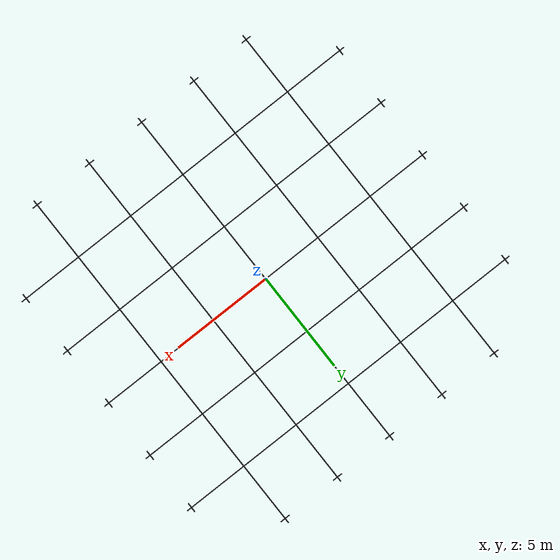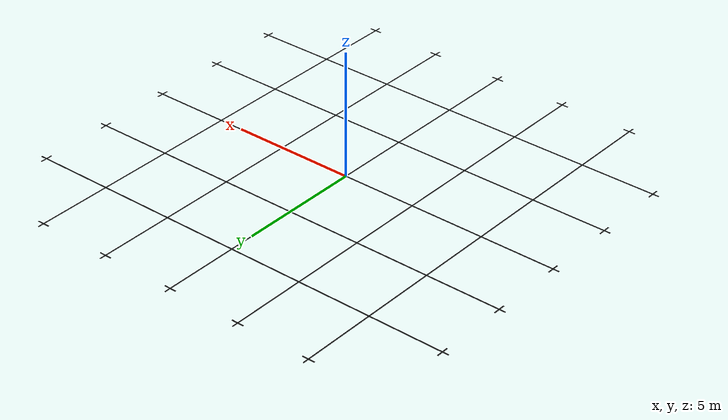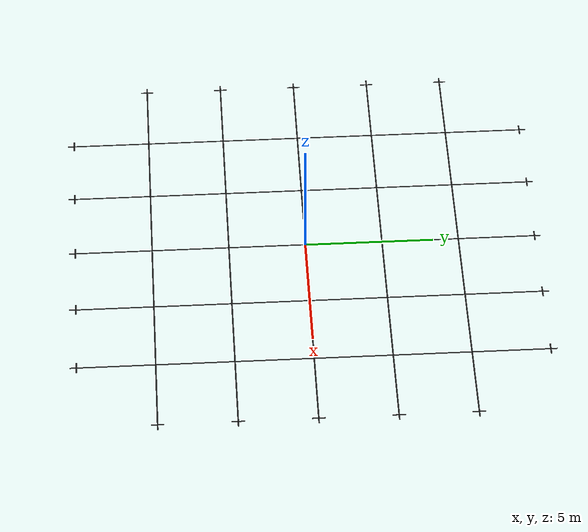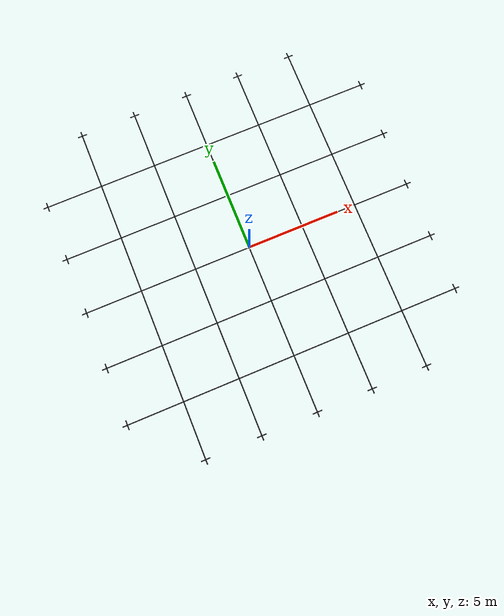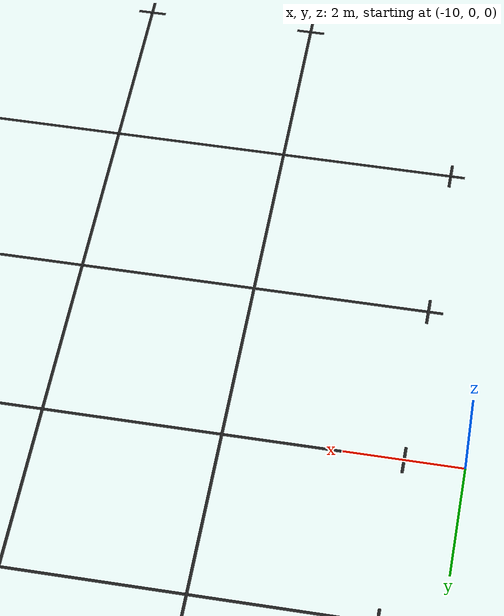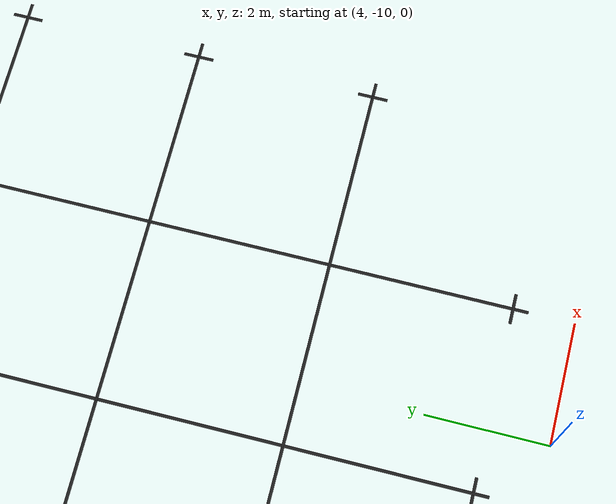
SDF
<?xml version='1.0'?>
<sdf version='1.4'>
  <model name='shop_floor_tape'>
  <static>true</static>
<link name='tape_x_0'>
  <collision name='tape_x_0_collision'>
    <geometry>
      <box>
        <size>18.50 0.05 0.001</size>
      </box>
    </geometry>
    <pose>0 0 0.0005 0 -0 0</pose>
  </collision>
  <visual name='tape_x_0_visual'>
    <pose>0 0 0.0005 0 -0 0</pose>
    <geometry>
      <box>
        <size>18.50 0.05 0.001</size>
      </box>
    </geometry>
    <material>
      <script>
        <uri>file://media/materials/scripts/gazebo.material</uri>
        <name>Gazebo/Black</name>
      </script>
    </material>
  </visual>
  <velocity_decay>
    <linear>0</linear>
    <angular>0</angular>
  </velocity_decay>
  <pose>0.00 6.00 0 0 -0 0</pose>
</link>
<link name='tape_x_1'>
  <collision name='tape_x_1_collision'>
    <geometry>
      <box>
        <size>18.50 0.05 0.001</size>
      </box>
    </geometry>
    <pose>0 0 0.0005 0 -0 0</pose>
  </collision>
  <visual name='tape_x_1_visual'>
    <pose>0 0 0.0005 0 -0 0</pose>
    <geometry>
      <box>
        <size>18.50 0.05 0.001</size>
      </box>
    </geometry>
    <material>
      <script>
        <uri>file://media/materials/scripts/gazebo.material</uri>
        <name>Gazebo/Black</name>
      </script>
    </material>
  </visual>
  <velocity_decay>
    <linear>0</linear>
    <angular>0</angular>
  </velocity_decay>
  <pose>0.00 3.00 0 0 -0 0</pose>
</link>
<link name='tape_x_2'>
  <collision name='tape_x_2_collision'>
    <geometry>
      <box>
        <size>18.50 0.05 0.001</size>
      </box>
    </geometry>
    <pose>0 0 0.0005 0 -0 0</pose>
  </collision>
  <visual name='tape_x_2_visual'>
    <pose>0 0 0.0005 0 -0 0</pose>
    <geometry>
      <box>
        <size>18.50 0.05 0.001</size>
      </box>
    </geometry>
    <material>
      <script>
        <uri>file://media/materials/scripts/gazebo.material</uri>
        <name>Gazebo/Black</name>
      </script>
    </material>
  </visual>
  <velocity_decay>
    <linear>0</linear>
    <angular>0</angular>
  </velocity_decay>
  <pose>0.00 0.00 0 0 -0 0</pose>
</link>
<link name='tape_x_3'>
  <collision name='tape_x_3_collision'>
    <geometry>
      <box>
        <size>18.50 0.05 0.001</size>
      </box>
    </geometry>
    <pose>0 0 0.0005 0 -0 0</pose>
  </collision>
  <visual name='tape_x_3_visual'>
    <pose>0 0 0.0005 0 -0 0</pose>
    <geometry>
      <box>
        <size>18.50 0.05 0.001</size>
      </box>
    </geometry>
    <material>
      <script>
        <uri>file://media/materials/scripts/gazebo.material</uri>
        <name>Gazebo/Black</name>
      </script>
    </material>
  </visual>
  <velocity_decay>
    <linear>0</linear>
    <angular>0</angular>
  </velocity_decay>
  <pose>0.00 -3.00 0 0 -0 0</pose>
</link>
<link name='tape_x_4'>
  <collision name='tape_x_4_collision'>
    <geometry>
      <box>
        <size>18.50 0.05 0.001</size>
      </box>
    </geometry>
    <pose>0 0 0.0005 0 -0 0</pose>
  </collision>
  <visual name='tape_x_4_visual'>
    <pose>0 0 0.0005 0 -0 0</pose>
    <geometry>
      <box>
        <size>18.50 0.05 0.001</size>
      </box>
    </geometry>
    <material>
      <script>
        <uri>file://media/materials/scripts/gazebo.material</uri>
        <name>Gazebo/Black</name>
      </script>
    </material>
  </visual>
  <velocity_decay>
    <linear>0</linear>
    <angular>0</angular>
  </velocity_decay>
  <pose>0.00 -6.00 0 0 -0 0</pose>
</link>
<link name='tape_x_5'>
  <collision name='tape_x_5_collision'>
    <geometry>
      <box>
        <size>0.05 0.50 0.001</size>
      </box>
    </geometry>
    <pose>0 0 0.0005 0 -0 0</pose>
  </collision>
  <visual name='tape_x_5_visual'>
    <pose>0 0 0.0005 0 -0 0</pose>
    <geometry>
      <box>
        <size>0.05 0.50 0.001</size>
      </box>
    </geometry>
    <material>
      <script>
        <uri>file://media/materials/scripts/gazebo.material</uri>
        <name>Gazebo/Black</name>
      </script>
    </material>
  </visual>
  <velocity_decay>
    <linear>0</linear>
    <angular>0</angular>
  </velocity_decay>
  <pose>9.00 6.00 0 0 -0 0</pose>
</link>
<link name='tape_x_6'>
  <collision name='tape_x_6_collision'>
    <geometry>
      <box>
        <size>0.05 0.50 0.001</size>
      </box>
    </geometry>
    <pose>0 0 0.0005 0 -0 0</pose>
  </collision>
  <visual name='tape_x_6_visual'>
    <pose>0 0 0.0005 0 -0 0</pose>
    <geometry>
      <box>
        <size>0.05 0.50 0.001</size>
      </box>
    </geometry>
    <material>
      <script>
        <uri>file://media/materials/scripts/gazebo.material</uri>
        <name>Gazebo/Black</name>
      </script>
    </material>
  </visual>
  <velocity_decay>
    <linear>0</linear>
    <angular>0</angular>
  </velocity_decay>
  <pose>9.00 3.00 0 0 -0 0</pose>
</link>
<link name='tape_x_7'>
  <collision name='tape_x_7_collision'>
    <geometry>
      <box>
        <size>0.05 0.50 0.001</size>
      </box>
    </geometry>
    <pose>0 0 0.0005 0 -0 0</pose>
  </collision>
  <visual name='tape_x_7_visual'>
    <pose>0 0 0.0005 0 -0 0</pose>
    <geometry>
      <box>
        <size>0.05 0.50 0.001</size>
      </box>
    </geometry>
    <material>
      <script>
        <uri>file://media/materials/scripts/gazebo.material</uri>
        <name>Gazebo/Black</name>
      </script>
    </material>
  </visual>
  <velocity_decay>
    <linear>0</linear>
    <angular>0</angular>
  </velocity_decay>
  <pose>9.00 0.00 0 0 -0 0</pose>
</link>
<link name='tape_x_8'>
  <collision name='tape_x_8_collision'>
    <geometry>
      <box>
        <size>0.05 0.50 0.001</size>
      </box>
    </geometry>
    <pose>0 0 0.0005 0 -0 0</pose>
  </collision>
  <visual name='tape_x_8_visual'>
    <pose>0 0 0.0005 0 -0 0</pose>
    <geometry>
      <box>
        <size>0.05 0.50 0.001</size>
      </box>
    </geometry>
    <material>
      <script>
        <uri>file://media/materials/scripts/gazebo.material</uri>
        <name>Gazebo/Black</name>
      </script>
    </material>
  </visual>
  <velocity_decay>
    <linear>0</linear>
    <angular>0</angular>
  </velocity_decay>
  <pose>9.00 -3.00 0 0 -0 0</pose>
</link>
<link name='tape_x_9'>
  <collision name='tape_x_9_collision'>
    <geometry>
      <box>
        <size>0.05 0.50 0.001</size>
      </box>
    </geometry>
    <pose>0 0 0.0005 0 -0 0</pose>
  </collision>
  <visual name='tape_x_9_visual'>
    <pose>0 0 0.0005 0 -0 0</pose>
    <geometry>
      <box>
        <size>0.05 0.50 0.001</size>
      </box>
    </geometry>
    <material>
      <script>
        <uri>file://media/materials/scripts/gazebo.material</uri>
        <name>Gazebo/Black</name>
      </script>
    </material>
  </visual>
  <velocity_decay>
    <linear>0</linear>
    <angular>0</angular>
  </velocity_decay>
  <pose>9.00 -6.00 0 0 -0 0</pose>
</link>
<link name='tape_x_10'>
  <collision name='tape_x_10_collision'>
    <geometry>
      <box>
        <size>0.05 0.50 0.001</size>
      </box>
    </geometry>
    <pose>0 0 0.0005 0 -0 0</pose>
  </collision>
  <visual name='tape_x_10_visual'>
    <pose>0 0 0.0005 0 -0 0</pose>
    <geometry>
      <box>
        <size>0.05 0.50 0.001</size>
      </box>
    </geometry>
    <material>
      <script>
        <uri>file://media/materials/scripts/gazebo.material</uri>
        <name>Gazebo/Black</name>
      </script>
    </material>
  </visual>
  <velocity_decay>
    <linear>0</linear>
    <angular>0</angular>
  </velocity_decay>
  <pose>-9.00 6.00 0 0 -0 0</pose>
</link>
<link name='tape_x_11'>
  <collision name='tape_x_11_collision'>
    <geometry>
      <box>
        <size>0.05 0.50 0.001</size>
      </box>
    </geometry>
    <pose>0 0 0.0005 0 -0 0</pose>
  </collision>
  <visual name='tape_x_11_visual'>
    <pose>0 0 0.0005 0 -0 0</pose>
    <geometry>
      <box>
        <size>0.05 0.50 0.001</size>
      </box>
    </geometry>
    <material>
      <script>
        <uri>file://media/materials/scripts/gazebo.material</uri>
        <name>Gazebo/Black</name>
      </script>
    </material>
  </visual>
  <velocity_decay>
    <linear>0</linear>
    <angular>0</angular>
  </velocity_decay>
  <pose>-9.00 3.00 0 0 -0 0</pose>
</link>
<link name='tape_x_12'>
  <collision name='tape_x_12_collision'>
    <geometry>
      <box>
        <size>0.05 0.50 0.001</size>
      </box>
    </geometry>
    <pose>0 0 0.0005 0 -0 0</pose>
  </collision>
  <visual name='tape_x_12_visual'>
    <pose>0 0 0.0005 0 -0 0</pose>
    <geometry>
      <box>
        <size>0.05 0.50 0.001</size>
      </box>
    </geometry>
    <material>
      <script>
        <uri>file://media/materials/scripts/gazebo.material</uri>
        <name>Gazebo/Black</name>
      </script>
    </material>
  </visual>
  <velocity_decay>
    <linear>0</linear>
    <angular>0</angular>
  </velocity_decay>
  <pose>-9.00 0.00 0 0 -0 0</pose>
</link>
<link name='tape_x_13'>
  <collision name='tape_x_13_collision'>
    <geometry>
      <box>
        <size>0.05 0.50 0.001</size>
      </box>
    </geometry>
    <pose>0 0 0.0005 0 -0 0</pose>
  </collision>
  <visual name='tape_x_13_visual'>
    <pose>0 0 0.0005 0 -0 0</pose>
    <geometry>
      <box>
        <size>0.05 0.50 0.001</size>
      </box>
    </geometry>
    <material>
      <script>
        <uri>file://media/materials/scripts/gazebo.material</uri>
        <name>Gazebo/Black</name>
      </script>
    </material>
  </visual>
  <velocity_decay>
    <linear>0</linear>
    <angular>0</angular>
  </velocity_decay>
  <pose>-9.00 -3.00 0 0 -0 0</pose>
</link>
<link name='tape_x_14'>
  <collision name='tape_x_14_collision'>
    <geometry>
      <box>
        <size>0.05 0.50 0.001</size>
      </box>
    </geometry>
    <pose>0 0 0.0005 0 -0 0</pose>
  </collision>
  <visual name='tape_x_14_visual'>
    <pose>0 0 0.0005 0 -0 0</pose>
    <geometry>
      <box>
        <size>0.05 0.50 0.001</size>
      </box>
    </geometry>
    <material>
      <script>
        <uri>file://media/materials/scripts/gazebo.material</uri>
        <name>Gazebo/Black</name>
      </script>
    </material>
  </visual>
  <velocity_decay>
    <linear>0</linear>
    <angular>0</angular>
  </velocity_decay>
  <pose>-9.00 -6.00 0 0 -0 0</pose>
</link>
<link name='tape_x_15'>
  <collision name='tape_x_15_collision'>
    <geometry>
      <box>
        <size>0.05 18.50 0.001</size>
      </box>
    </geometry>
    <pose>0 0 0.0005 0 -0 0</pose>
  </collision>
  <visual name='tape_x_15_visual'>
    <pose>0 0 0.0005 0 -0 0</pose>
    <geometry>
      <box>
        <size>0.05 18.50 0.001</size>
      </box>
    </geometry>
    <material>
      <script>
        <uri>file://media/materials/scripts/gazebo.material</uri>
        <name>Gazebo/Black</name>
      </script>
    </material>
  </visual>
  <velocity_decay>
    <linear>0</linear>
    <angular>0</angular>
  </velocity_decay>
  <pose>6.00 0.00 0 0 -0 0</pose>
</link>
<link name='tape_x_16'>
  <collision name='tape_x_16_collision'>
    <geometry>
      <box>
        <size>0.05 18.50 0.001</size>
      </box>
    </geometry>
    <pose>0 0 0.0005 0 -0 0</pose>
  </collision>
  <visual name='tape_x_16_visual'>
    <pose>0 0 0.0005 0 -0 0</pose>
    <geometry>
      <box>
        <size>0.05 18.50 0.001</size>
      </box>
    </geometry>
    <material>
      <script>
        <uri>file://media/materials/scripts/gazebo.material</uri>
        <name>Gazebo/Black</name>
      </script>
    </material>
  </visual>
  <velocity_decay>
    <linear>0</linear>
    <angular>0</angular>
  </velocity_decay>
  <pose>3.00 0.00 0 0 -0 0</pose>
</link>
<link name='tape_x_17'>
  <collision name='tape_x_17_collision'>
    <geometry>
      <box>
        <size>0.05 18.50 0.001</size>
      </box>
    </geometry>
    <pose>0 0 0.0005 0 -0 0</pose>
  </collision>
  <visual name='tape_x_17_visual'>
    <pose>0 0 0.0005 0 -0 0</pose>
    <geometry>
      <box>
        <size>0.05 18.50 0.001</size>
      </box>
    </geometry>
    <material>
      <script>
        <uri>file://media/materials/scripts/gazebo.material</uri>
        <name>Gazebo/Black</name>
      </script>
    </material>
  </visual>
  <velocity_decay>
    <linear>0</linear>
    <angular>0</angular>
  </velocity_decay>
  <pose>0.00 0.00 0 0 -0 0</pose>
</link>
<link name='tape_x_18'>
  <collision name='tape_x_18_collision'>
    <geometry>
      <box>
        <size>0.05 18.50 0.001</size>
      </box>
    </geometry>
    <pose>0 0 0.0005 0 -0 0</pose>
  </collision>
  <visual name='tape_x_18_visual'>
    <pose>0 0 0.0005 0 -0 0</pose>
    <geometry>
      <box>
        <size>0.05 18.50 0.001</size>
      </box>
    </geometry>
    <material>
      <script>
        <uri>file://media/materials/scripts/gazebo.material</uri>
        <name>Gazebo/Black</name>
      </script>
    </material>
  </visual>
  <velocity_decay>
    <linear>0</linear>
    <angular>0</angular>
  </velocity_decay>
  <pose>-3.00 0.00 0 0 -0 0</pose>
</link>
<link name='tape_x_19'>
  <collision name='tape_x_19_collision'>
    <geometry>
      <box>
        <size>0.05 18.50 0.001</size>
      </box>
    </geometry>
    <pose>0 0 0.0005 0 -0 0</pose>
  </collision>
  <visual name='tape_x_19_visual'>
    <pose>0 0 0.0005 0 -0 0</pose>
    <geometry>
      <box>
        <size>0.05 18.50 0.001</size>
      </box>
    </geometry>
    <material>
      <script>
        <uri>file://media/materials/scripts/gazebo.material</uri>
        <name>Gazebo/Black</name>
      </script>
    </material>
  </visual>
  <velocity_decay>
    <linear>0</linear>
    <angular>0</angular>
  </velocity_decay>
  <pose>-6.00 0.00 0 0 -0 0</pose>
</link>
<link name='tape_x_20'>
  <collision name='tape_x_20_collision'>
    <geometry>
      <box>
        <size>0.50 0.05 0.001</size>
      </box>
    </geometry>
    <pose>0 0 0.0005 0 -0 0</pose>
  </collision>
  <visual name='tape_x_20_visual'>
    <pose>0 0 0.0005 0 -0 0</pose>
    <geometry>
      <box>
        <size>0.50 0.05 0.001</size>
      </box>
    </geometry>
    <material>
      <script>
        <uri>file://media/materials/scripts/gazebo.material</uri>
        <name>Gazebo/Black</name>
      </script>
    </material>
  </visual>
  <velocity_decay>
    <linear>0</linear>
    <angular>0</angular>
  </velocity_decay>
  <pose>6.00 9.00 0 0 -0 0</pose>
</link>
<link name='tape_x_21'>
  <collision name='tape_x_21_collision'>
    <geometry>
      <box>
        <size>0.50 0.05 0.001</size>
      </box>
    </geometry>
    <pose>0 0 0.0005 0 -0 0</pose>
  </collision>
  <visual name='tape_x_21_visual'>
    <pose>0 0 0.0005 0 -0 0</pose>
    <geometry>
      <box>
        <size>0.50 0.05 0.001</size>
      </box>
    </geometry>
    <material>
      <script>
        <uri>file://media/materials/scripts/gazebo.material</uri>
        <name>Gazebo/Black</name>
      </script>
    </material>
  </visual>
  <velocity_decay>
    <linear>0</linear>
    <angular>0</angular>
  </velocity_decay>
  <pose>3.00 9.00 0 0 -0 0</pose>
</link>
<link name='tape_x_22'>
  <collision name='tape_x_22_collision'>
    <geometry>
      <box>
        <size>0.50 0.05 0.001</size>
      </box>
    </geometry>
    <pose>0 0 0.0005 0 -0 0</pose>
  </collision>
  <visual name='tape_x_22_visual'>
    <pose>0 0 0.0005 0 -0 0</pose>
    <geometry>
      <box>
        <size>0.50 0.05 0.001</size>
      </box>
    </geometry>
    <material>
      <script>
        <uri>file://media/materials/scripts/gazebo.material</uri>
        <name>Gazebo/Black</name>
      </script>
    </material>
  </visual>
  <velocity_decay>
    <linear>0</linear>
    <angular>0</angular>
  </velocity_decay>
  <pose>0.00 9.00 0 0 -0 0</pose>
</link>
<link name='tape_x_23'>
  <collision name='tape_x_23_collision'>
    <geometry>
      <box>
        <size>0.50 0.05 0.001</size>
      </box>
    </geometry>
    <pose>0 0 0.0005 0 -0 0</pose>
  </collision>
  <visual name='tape_x_23_visual'>
    <pose>0 0 0.0005 0 -0 0</pose>
    <geometry>
      <box>
        <size>0.50 0.05 0.001</size>
      </box>
    </geometry>
    <material>
      <script>
        <uri>file://media/materials/scripts/gazebo.material</uri>
        <name>Gazebo/Black</name>
      </script>
    </material>
  </visual>
  <velocity_decay>
    <linear>0</linear>
    <angular>0</angular>
  </velocity_decay>
  <pose>-3.00 9.00 0 0 -0 0</pose>
</link>
<link name='tape_x_24'>
  <collision name='tape_x_24_collision'>
    <geometry>
      <box>
        <size>0.50 0.05 0.001</size>
      </box>
    </geometry>
    <pose>0 0 0.0005 0 -0 0</pose>
  </collision>
  <visual name='tape_x_24_visual'>
    <pose>0 0 0.0005 0 -0 0</pose>
    <geometry>
      <box>
        <size>0.50 0.05 0.001</size>
      </box>
    </geometry>
    <material>
      <script>
        <uri>file://media/materials/scripts/gazebo.material</uri>
        <name>Gazebo/Black</name>
      </script>
    </material>
  </visual>
  <velocity_decay>
    <linear>0</linear>
    <angular>0</angular>
  </velocity_decay>
  <pose>-6.00 9.00 0 0 -0 0</pose>
</link>
<link name='tape_x_25'>
  <collision name='tape_x_25_collision'>
    <geometry>
      <box>
        <size>0.50 0.05 0.001</size>
      </box>
    </geometry>
    <pose>0 0 0.0005 0 -0 0</pose>
  </collision>
  <visual name='tape_x_25_visual'>
    <pose>0 0 0.0005 0 -0 0</pose>
    <geometry>
      <box>
        <size>0.50 0.05 0.001</size>
      </box>
    </geometry>
    <material>
      <script>
        <uri>file://media/materials/scripts/gazebo.material</uri>
        <name>Gazebo/Black</name>
      </script>
    </material>
  </visual>
  <velocity_decay>
    <linear>0</linear>
    <angular>0</angular>
  </velocity_decay>
  <pose>6.00 -9.00 0 0 -0 0</pose>
</link>
<link name='tape_x_26'>
  <collision name='tape_x_26_collision'>
    <geometry>
      <box>
        <size>0.50 0.05 0.001</size>
      </box>
    </geometry>
    <pose>0 0 0.0005 0 -0 0</pose>
  </collision>
  <visual name='tape_x_26_visual'>
    <pose>0 0 0.0005 0 -0 0</pose>
    <geometry>
      <box>
        <size>0.50 0.05 0.001</size>
      </box>
    </geometry>
    <material>
      <script>
        <uri>file://media/materials/scripts/gazebo.material</uri>
        <name>Gazebo/Black</name>
      </script>
    </material>
  </visual>
  <velocity_decay>
    <linear>0</linear>
    <angular>0</angular>
  </velocity_decay>
  <pose>3.00 -9.00 0 0 -0 0</pose>
</link>
<link name='tape_x_27'>
  <collision name='tape_x_27_collision'>
    <geometry>
      <box>
        <size>0.50 0.05 0.001</size>
      </box>
    </geometry>
    <pose>0 0 0.0005 0 -0 0</pose>
  </collision>
  <visual name='tape_x_27_visual'>
    <pose>0 0 0.0005 0 -0 0</pose>
    <geometry>
      <box>
        <size>0.50 0.05 0.001</size>
      </box>
    </geometry>
    <material>
      <script>
        <uri>file://media/materials/scripts/gazebo.material</uri>
        <name>Gazebo/Black</name>
      </script>
    </material>
  </visual>
  <velocity_decay>
    <linear>0</linear>
    <angular>0</angular>
  </velocity_decay>
  <pose>0.00 -9.00 0 0 -0 0</pose>
</link>
<link name='tape_x_28'>
  <collision name='tape_x_28_collision'>
    <geometry>
      <box>
        <size>0.50 0.05 0.001</size>
      </box>
    </geometry>
    <pose>0 0 0.0005 0 -0 0</pose>
  </collision>
  <visual name='tape_x_28_visual'>
    <pose>0 0 0.0005 0 -0 0</pose>
    <geometry>
      <box>
        <size>0.50 0.05 0.001</size>
      </box>
    </geometry>
    <material>
      <script>
        <uri>file://media/materials/scripts/gazebo.material</uri>
        <name>Gazebo/Black</name>
      </script>
    </material>
  </visual>
  <velocity_decay>
    <linear>0</linear>
    <angular>0</angular>
  </velocity_decay>
  <pose>-3.00 -9.00 0 0 -0 0</pose>
</link>
<link name='tape_x_29'>
  <collision name='tape_x_29_collision'>
    <geometry>
      <box>
        <size>0.50 0.05 0.001</size>
      </box>
    </geometry>
    <pose>0 0 0.0005 0 -0 0</pose>
  </collision>
  <visual name='tape_x_29_visual'>
    <pose>0 0 0.0005 0 -0 0</pose>
    <geometry>
      <box>
        <size>0.50 0.05 0.001</size>
      </box>
    </geometry>
    <material>
      <script>
        <uri>file://media/materials/scripts/gazebo.material</uri>
        <name>Gazebo/Black</name>
      </script>
    </material>
  </visual>
  <velocity_decay>
    <linear>0</linear>
    <angular>0</angular>
  </velocity_decay>
  <pose>-6.00 -9.00 0 0 -0 0</pose>
</link>
  </model>
</sdf>
